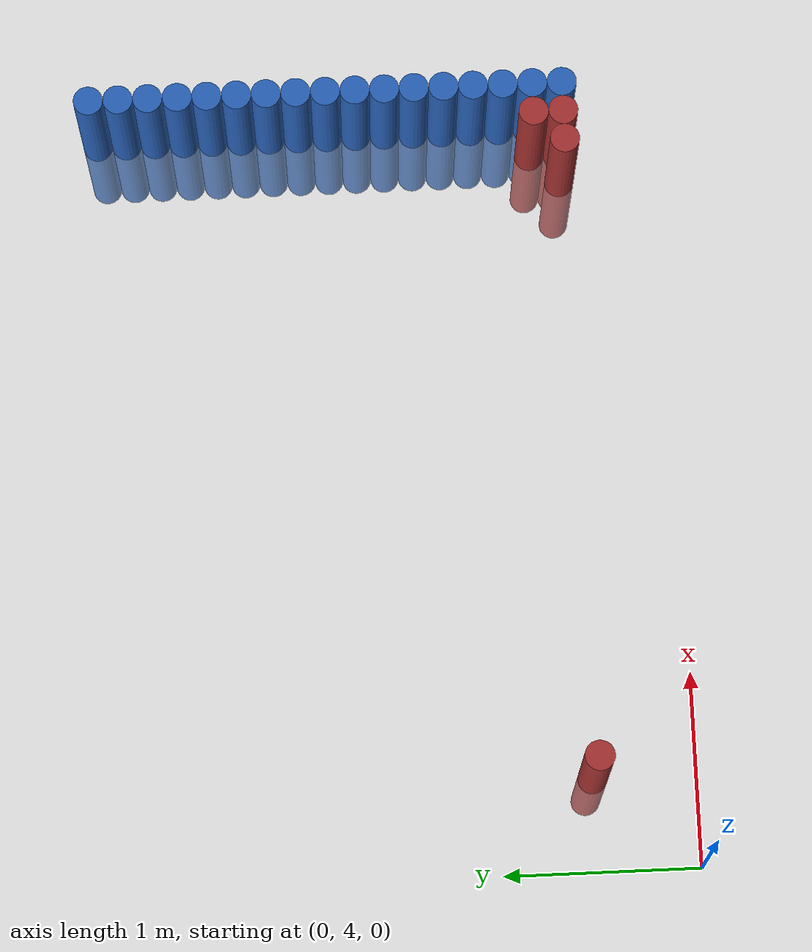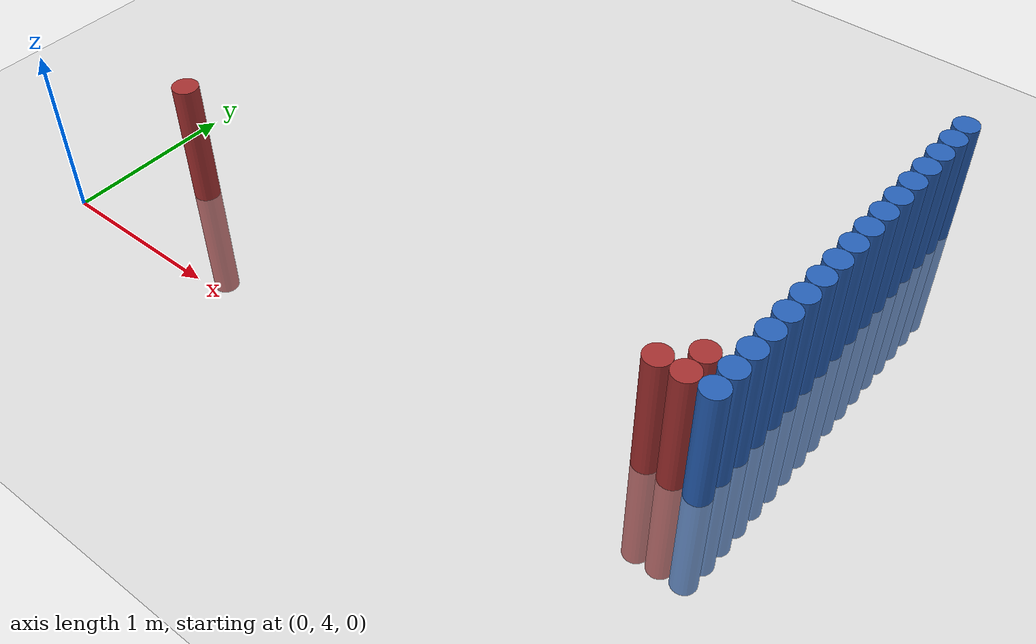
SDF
<sdf version="1.6">
 <world name="default">
  <model name="ground_plane">
   <static>1</static>
   <link name="link">
    <collision name="collision">
     <geometry><plane><normal>0 0 1</normal><size>100 100</size></plane></geometry>
     <surface><friction><ode><mu>100</mu><mu2>50</mu2></ode></friction></surface>
    </collision>
    <visual name="visual">
     <cast_shadows>0</cast_shadows>
     <geometry><plane><normal>0 0 1</normal><size>100 100</size></plane></geometry>
     <material>
      <script><uri>file://media/materials/scripts/gazebo.material</uri><name>Gazebo/Grey</name></script>
     </material>
    </visual>
   </link>
  </model>
  <model name="unit_cylinder_174">
   <static>1</static>
   <pose>3.925000 4.525000 0.000000 0.000000 0.000000 0.000000</pose>
   <link name="link">
    <inertial>
     <mass>1</mass>
     <inertia><ixx>0.145833</ixx><ixy>0</ixy><ixz>0</ixz><iyy>0.145833</iyy><iyz>0</iyz><izz>0.125</izz></inertia>
    </inertial>
    <collision name="collision">
     <geometry><cylinder><radius>0.075000</radius><length>1.5</length></cylinder></geometry>
    </collision>
    <visual name="visual">
     <geometry><cylinder><radius>0.075000</radius><length>1.5</length></cylinder></geometry>
     <material>
      <ambient>0.152000 0.379000 0.720000 1</ambient>
      <diffuse>0.152000 0.379000 0.720000 1</diffuse>
     </material>
     <material>
      <script><name>Gazebo/Grey</name><uri>file://media/materials/scripts/gazebo.material</uri></script>
     </material>
    </visual>
   </link>
  </model>
  <model name="unit_cylinder_176">
   <static>1</static>
   <pose>3.925000 4.675000 0.000000 0.000000 0.000000 0.000000</pose>
   <link name="link">
    <inertial>
     <mass>1</mass>
     <inertia><ixx>0.145833</ixx><ixy>0</ixy><ixz>0</ixz><iyy>0.145833</iyy><iyz>0</iyz><izz>0.125</izz></inertia>
    </inertial>
    <collision name="collision">
     <geometry><cylinder><radius>0.075000</radius><length>1.5</length></cylinder></geometry>
    </collision>
    <visual name="visual">
     <geometry><cylinder><radius>0.075000</radius><length>1.5</length></cylinder></geometry>
     <material>
      <ambient>0.152000 0.379000 0.720000 1</ambient>
      <diffuse>0.152000 0.379000 0.720000 1</diffuse>
     </material>
     <material>
      <script><name>Gazebo/Grey</name><uri>file://media/materials/scripts/gazebo.material</uri></script>
     </material>
    </visual>
   </link>
  </model>
  <model name="unit_cylinder_178">
   <static>1</static>
   <pose>3.925000 4.825000 0.000000 0.000000 0.000000 0.000000</pose>
   <link name="link">
    <inertial>
     <mass>1</mass>
     <inertia><ixx>0.145833</ixx><ixy>0</ixy><ixz>0</ixz><iyy>0.145833</iyy><iyz>0</iyz><izz>0.125</izz></inertia>
    </inertial>
    <collision name="collision">
     <geometry><cylinder><radius>0.075000</radius><length>1.5</length></cylinder></geometry>
    </collision>
    <visual name="visual">
     <geometry><cylinder><radius>0.075000</radius><length>1.5</length></cylinder></geometry>
     <material>
      <ambient>0.152000 0.379000 0.720000 1</ambient>
      <diffuse>0.152000 0.379000 0.720000 1</diffuse>
     </material>
     <material>
      <script><name>Gazebo/Grey</name><uri>file://media/materials/scripts/gazebo.material</uri></script>
     </material>
    </visual>
   </link>
  </model>
  <model name="unit_cylinder_180">
   <static>1</static>
   <pose>3.925000 4.975000 0.000000 0.000000 0.000000 0.000000</pose>
   <link name="link">
    <inertial>
     <mass>1</mass>
     <inertia><ixx>0.145833</ixx><ixy>0</ixy><ixz>0</ixz><iyy>0.145833</iyy><iyz>0</iyz><izz>0.125</izz></inertia>
    </inertial>
    <collision name="collision">
     <geometry><cylinder><radius>0.075000</radius><length>1.5</length></cylinder></geometry>
    </collision>
    <visual name="visual">
     <geometry><cylinder><radius>0.075000</radius><length>1.5</length></cylinder></geometry>
     <material>
      <ambient>0.152000 0.379000 0.720000 1</ambient>
      <diffuse>0.152000 0.379000 0.720000 1</diffuse>
     </material>
     <material>
      <script><name>Gazebo/Grey</name><uri>file://media/materials/scripts/gazebo.material</uri></script>
     </material>
    </visual>
   </link>
  </model>
  <model name="unit_cylinder_182">
   <static>1</static>
   <pose>3.925000 5.125000 0.000000 0.000000 0.000000 0.000000</pose>
   <link name="link">
    <inertial>
     <mass>1</mass>
     <inertia><ixx>0.145833</ixx><ixy>0</ixy><ixz>0</ixz><iyy>0.145833</iyy><iyz>0</iyz><izz>0.125</izz></inertia>
    </inertial>
    <collision name="collision">
     <geometry><cylinder><radius>0.075000</radius><length>1.5</length></cylinder></geometry>
    </collision>
    <visual name="visual">
     <geometry><cylinder><radius>0.075000</radius><length>1.5</length></cylinder></geometry>
     <material>
      <ambient>0.152000 0.379000 0.720000 1</ambient>
      <diffuse>0.152000 0.379000 0.720000 1</diffuse>
     </material>
     <material>
      <script><name>Gazebo/Grey</name><uri>file://media/materials/scripts/gazebo.material</uri></script>
     </material>
    </visual>
   </link>
  </model>
  <model name="unit_cylinder_184">
   <static>1</static>
   <pose>3.925000 5.275000 0.000000 0.000000 0.000000 0.000000</pose>
   <link name="link">
    <inertial>
     <mass>1</mass>
     <inertia><ixx>0.145833</ixx><ixy>0</ixy><ixz>0</ixz><iyy>0.145833</iyy><iyz>0</iyz><izz>0.125</izz></inertia>
    </inertial>
    <collision name="collision">
     <geometry><cylinder><radius>0.075000</radius><length>1.5</length></cylinder></geometry>
    </collision>
    <visual name="visual">
     <geometry><cylinder><radius>0.075000</radius><length>1.5</length></cylinder></geometry>
     <material>
      <ambient>0.152000 0.379000 0.720000 1</ambient>
      <diffuse>0.152000 0.379000 0.720000 1</diffuse>
     </material>
     <material>
      <script><name>Gazebo/Grey</name><uri>file://media/materials/scripts/gazebo.material</uri></script>
     </material>
    </visual>
   </link>
  </model>
  <model name="unit_cylinder_186">
   <static>1</static>
   <pose>3.925000 5.425000 0.000000 0.000000 0.000000 0.000000</pose>
   <link name="link">
    <inertial>
     <mass>1</mass>
     <inertia><ixx>0.145833</ixx><ixy>0</ixy><ixz>0</ixz><iyy>0.145833</iyy><iyz>0</iyz><izz>0.125</izz></inertia>
    </inertial>
    <collision name="collision">
     <geometry><cylinder><radius>0.075000</radius><length>1.5</length></cylinder></geometry>
    </collision>
    <visual name="visual">
     <geometry><cylinder><radius>0.075000</radius><length>1.5</length></cylinder></geometry>
     <material>
      <ambient>0.152000 0.379000 0.720000 1</ambient>
      <diffuse>0.152000 0.379000 0.720000 1</diffuse>
     </material>
     <material>
      <script><name>Gazebo/Grey</name><uri>file://media/materials/scripts/gazebo.material</uri></script>
     </material>
    </visual>
   </link>
  </model>
  <model name="unit_cylinder_188">
   <static>1</static>
   <pose>3.925000 5.575000 0.000000 0.000000 0.000000 0.000000</pose>
   <link name="link">
    <inertial>
     <mass>1</mass>
     <inertia><ixx>0.145833</ixx><ixy>0</ixy><ixz>0</ixz><iyy>0.145833</iyy><iyz>0</iyz><izz>0.125</izz></inertia>
    </inertial>
    <collision name="collision">
     <geometry><cylinder><radius>0.075000</radius><length>1.5</length></cylinder></geometry>
    </collision>
    <visual name="visual">
     <geometry><cylinder><radius>0.075000</radius><length>1.5</length></cylinder></geometry>
     <material>
      <ambient>0.152000 0.379000 0.720000 1</ambient>
      <diffuse>0.152000 0.379000 0.720000 1</diffuse>
     </material>
     <material>
      <script><name>Gazebo/Grey</name><uri>file://media/materials/scripts/gazebo.material</uri></script>
     </material>
    </visual>
   </link>
  </model>
  <model name="unit_cylinder_190">
   <static>1</static>
   <pose>3.925000 5.725000 0.000000 0.000000 0.000000 0.000000</pose>
   <link name="link">
    <inertial>
     <mass>1</mass>
     <inertia><ixx>0.145833</ixx><ixy>0</ixy><ixz>0</ixz><iyy>0.145833</iyy><iyz>0</iyz><izz>0.125</izz></inertia>
    </inertial>
    <collision name="collision">
     <geometry><cylinder><radius>0.075000</radius><length>1.5</length></cylinder></geometry>
    </collision>
    <visual name="visual">
     <geometry><cylinder><radius>0.075000</radius><length>1.5</length></cylinder></geometry>
     <material>
      <ambient>0.152000 0.379000 0.720000 1</ambient>
      <diffuse>0.152000 0.379000 0.720000 1</diffuse>
     </material>
     <material>
      <script><name>Gazebo/Grey</name><uri>file://media/materials/scripts/gazebo.material</uri></script>
     </material>
    </visual>
   </link>
  </model>
  <model name="unit_cylinder_192">
   <static>1</static>
   <pose>3.925000 5.875000 0.000000 0.000000 0.000000 0.000000</pose>
   <link name="link">
    <inertial>
     <mass>1</mass>
     <inertia><ixx>0.145833</ixx><ixy>0</ixy><ixz>0</ixz><iyy>0.145833</iyy><iyz>0</iyz><izz>0.125</izz></inertia>
    </inertial>
    <collision name="collision">
     <geometry><cylinder><radius>0.075000</radius><length>1.5</length></cylinder></geometry>
    </collision>
    <visual name="visual">
     <geometry><cylinder><radius>0.075000</radius><length>1.5</length></cylinder></geometry>
     <material>
      <ambient>0.152000 0.379000 0.720000 1</ambient>
      <diffuse>0.152000 0.379000 0.720000 1</diffuse>
     </material>
     <material>
      <script><name>Gazebo/Grey</name><uri>file://media/materials/scripts/gazebo.material</uri></script>
     </material>
    </visual>
   </link>
  </model>
  <model name="unit_cylinder_194">
   <static>1</static>
   <pose>3.925000 6.025000 0.000000 0.000000 0.000000 0.000000</pose>
   <link name="link">
    <inertial>
     <mass>1</mass>
     <inertia><ixx>0.145833</ixx><ixy>0</ixy><ixz>0</ixz><iyy>0.145833</iyy><iyz>0</iyz><izz>0.125</izz></inertia>
    </inertial>
    <collision name="collision">
     <geometry><cylinder><radius>0.075000</radius><length>1.5</length></cylinder></geometry>
    </collision>
    <visual name="visual">
     <geometry><cylinder><radius>0.075000</radius><length>1.5</length></cylinder></geometry>
     <material>
      <ambient>0.152000 0.379000 0.720000 1</ambient>
      <diffuse>0.152000 0.379000 0.720000 1</diffuse>
     </material>
     <material>
      <script><name>Gazebo/Grey</name><uri>file://media/materials/scripts/gazebo.material</uri></script>
     </material>
    </visual>
   </link>
  </model>
  <model name="unit_cylinder_196">
   <static>1</static>
   <pose>3.925000 6.175000 0.000000 0.000000 0.000000 0.000000</pose>
   <link name="link">
    <inertial>
     <mass>1</mass>
     <inertia><ixx>0.145833</ixx><ixy>0</ixy><ixz>0</ixz><iyy>0.145833</iyy><iyz>0</iyz><izz>0.125</izz></inertia>
    </inertial>
    <collision name="collision">
     <geometry><cylinder><radius>0.075000</radius><length>1.5</length></cylinder></geometry>
    </collision>
    <visual name="visual">
     <geometry><cylinder><radius>0.075000</radius><length>1.5</length></cylinder></geometry>
     <material>
      <ambient>0.152000 0.379000 0.720000 1</ambient>
      <diffuse>0.152000 0.379000 0.720000 1</diffuse>
     </material>
     <material>
      <script><name>Gazebo/Grey</name><uri>file://media/materials/scripts/gazebo.material</uri></script>
     </material>
    </visual>
   </link>
  </model>
  <model name="unit_cylinder_198">
   <static>1</static>
   <pose>3.925000 6.325000 0.000000 0.000000 0.000000 0.000000</pose>
   <link name="link">
    <inertial>
     <mass>1</mass>
     <inertia><ixx>0.145833</ixx><ixy>0</ixy><ixz>0</ixz><iyy>0.145833</iyy><iyz>0</iyz><izz>0.125</izz></inertia>
    </inertial>
    <collision name="collision">
     <geometry><cylinder><radius>0.075000</radius><length>1.5</length></cylinder></geometry>
    </collision>
    <visual name="visual">
     <geometry><cylinder><radius>0.075000</radius><length>1.5</length></cylinder></geometry>
     <material>
      <ambient>0.152000 0.379000 0.720000 1</ambient>
      <diffuse>0.152000 0.379000 0.720000 1</diffuse>
     </material>
     <material>
      <script><name>Gazebo/Grey</name><uri>file://media/materials/scripts/gazebo.material</uri></script>
     </material>
    </visual>
   </link>
  </model>
  <model name="unit_cylinder_200">
   <static>1</static>
   <pose>3.925000 6.475000 0.000000 0.000000 0.000000 0.000000</pose>
   <link name="link">
    <inertial>
     <mass>1</mass>
     <inertia><ixx>0.145833</ixx><ixy>0</ixy><ixz>0</ixz><iyy>0.145833</iyy><iyz>0</iyz><izz>0.125</izz></inertia>
    </inertial>
    <collision name="collision">
     <geometry><cylinder><radius>0.075000</radius><length>1.5</length></cylinder></geometry>
    </collision>
    <visual name="visual">
     <geometry><cylinder><radius>0.075000</radius><length>1.5</length></cylinder></geometry>
     <material>
      <ambient>0.152000 0.379000 0.720000 1</ambient>
      <diffuse>0.152000 0.379000 0.720000 1</diffuse>
     </material>
     <material>
      <script><name>Gazebo/Grey</name><uri>file://media/materials/scripts/gazebo.material</uri></script>
     </material>
    </visual>
   </link>
  </model>
  <model name="unit_cylinder_202">
   <static>1</static>
   <pose>3.925000 6.625000 0.000000 0.000000 0.000000 0.000000</pose>
   <link name="link">
    <inertial>
     <mass>1</mass>
     <inertia><ixx>0.145833</ixx><ixy>0</ixy><ixz>0</ixz><iyy>0.145833</iyy><iyz>0</iyz><izz>0.125</izz></inertia>
    </inertial>
    <collision name="collision">
     <geometry><cylinder><radius>0.075000</radius><length>1.5</length></cylinder></geometry>
    </collision>
    <visual name="visual">
     <geometry><cylinder><radius>0.075000</radius><length>1.5</length></cylinder></geometry>
     <material>
      <ambient>0.152000 0.379000 0.720000 1</ambient>
      <diffuse>0.152000 0.379000 0.720000 1</diffuse>
     </material>
     <material>
      <script><name>Gazebo/Grey</name><uri>file://media/materials/scripts/gazebo.material</uri></script>
     </material>
    </visual>
   </link>
  </model>
  <model name="unit_cylinder_204">
   <static>1</static>
   <pose>3.925000 6.775000 0.000000 0.000000 0.000000 0.000000</pose>
   <link name="link">
    <inertial>
     <mass>1</mass>
     <inertia><ixx>0.145833</ixx><ixy>0</ixy><ixz>0</ixz><iyy>0.145833</iyy><iyz>0</iyz><izz>0.125</izz></inertia>
    </inertial>
    <collision name="collision">
     <geometry><cylinder><radius>0.075000</radius><length>1.5</length></cylinder></geometry>
    </collision>
    <visual name="visual">
     <geometry><cylinder><radius>0.075000</radius><length>1.5</length></cylinder></geometry>
     <material>
      <ambient>0.152000 0.379000 0.720000 1</ambient>
      <diffuse>0.152000 0.379000 0.720000 1</diffuse>
     </material>
     <material>
      <script><name>Gazebo/Grey</name><uri>file://media/materials/scripts/gazebo.material</uri></script>
     </material>
    </visual>
   </link>
  </model>
  <model name="unit_cylinder_206">
   <static>1</static>
   <pose>3.925000 6.925000 0.000000 0.000000 0.000000 0.000000</pose>
   <link name="link">
    <inertial>
     <mass>1</mass>
     <inertia><ixx>0.145833</ixx><ixy>0</ixy><ixz>0</ixz><iyy>0.145833</iyy><iyz>0</iyz><izz>0.125</izz></inertia>
    </inertial>
    <collision name="collision">
     <geometry><cylinder><radius>0.075000</radius><length>1.5</length></cylinder></geometry>
    </collision>
    <visual name="visual">
     <geometry><cylinder><radius>0.075000</radius><length>1.5</length></cylinder></geometry>
     <material>
      <ambient>0.152000 0.379000 0.720000 1</ambient>
      <diffuse>0.152000 0.379000 0.720000 1</diffuse>
     </material>
     <material>
      <script><name>Gazebo/Grey</name><uri>file://media/materials/scripts/gazebo.material</uri></script>
     </material>
    </visual>
   </link>
  </model>
  <model name="unit_cylinder_327">
   <static>1</static>
   <pose>0.475000 4.525000 0.000000 0.000000 0.000000 0.000000</pose>
   <link name="link">
    <inertial>
     <mass>1</mass>
     <inertia><ixx>0.145833</ixx><ixy>0</ixy><ixz>0</ixz><iyy>0.145833</iyy><iyz>0</iyz><izz>0.125</izz></inertia>
    </inertial>
    <collision name="collision">
     <geometry><cylinder><radius>0.075000</radius><length>1.5</length></cylinder></geometry>
    </collision>
    <visual name="visual">
     <geometry><cylinder><radius>0.075000</radius><length>1.5</length></cylinder></geometry>
     <material>
      <ambient>0.648000 0.192000 0.192000 1</ambient>
      <diffuse>0.648000 0.192000 0.192000 1</diffuse>
     </material>
     <material>
      <script><name>Gazebo/Grey</name><uri>file://media/materials/scripts/gazebo.material</uri></script>
     </material>
    </visual>
   </link>
  </model>
  <model name="unit_cylinder_369">
   <static>1</static>
   <pose>3.625000 4.525000 0.000000 0.000000 0.000000 0.000000</pose>
   <link name="link">
    <inertial>
     <mass>1</mass>
     <inertia><ixx>0.145833</ixx><ixy>0</ixy><ixz>0</ixz><iyy>0.145833</iyy><iyz>0</iyz><izz>0.125</izz></inertia>
    </inertial>
    <collision name="collision">
     <geometry><cylinder><radius>0.075000</radius><length>1.5</length></cylinder></geometry>
    </collision>
    <visual name="visual">
     <geometry><cylinder><radius>0.075000</radius><length>1.5</length></cylinder></geometry>
     <material>
      <ambient>0.648000 0.192000 0.192000 1</ambient>
      <diffuse>0.648000 0.192000 0.192000 1</diffuse>
     </material>
     <material>
      <script><name>Gazebo/Grey</name><uri>file://media/materials/scripts/gazebo.material</uri></script>
     </material>
    </visual>
   </link>
  </model>
  <model name="unit_cylinder_383">
   <static>1</static>
   <pose>3.775000 4.525000 0.000000 0.000000 0.000000 0.000000</pose>
   <link name="link">
    <inertial>
     <mass>1</mass>
     <inertia><ixx>0.145833</ixx><ixy>0</ixy><ixz>0</ixz><iyy>0.145833</iyy><iyz>0</iyz><izz>0.125</izz></inertia>
    </inertial>
    <collision name="collision">
     <geometry><cylinder><radius>0.075000</radius><length>1.5</length></cylinder></geometry>
    </collision>
    <visual name="visual">
     <geometry><cylinder><radius>0.075000</radius><length>1.5</length></cylinder></geometry>
     <material>
      <ambient>0.648000 0.192000 0.192000 1</ambient>
      <diffuse>0.648000 0.192000 0.192000 1</diffuse>
     </material>
     <material>
      <script><name>Gazebo/Grey</name><uri>file://media/materials/scripts/gazebo.material</uri></script>
     </material>
    </visual>
   </link>
  </model>
  <model name="unit_cylinder_384">
   <static>1</static>
   <pose>3.775000 4.675000 0.000000 0.000000 0.000000 0.000000</pose>
   <link name="link">
    <inertial>
     <mass>1</mass>
     <inertia><ixx>0.145833</ixx><ixy>0</ixy><ixz>0</ixz><iyy>0.145833</iyy><iyz>0</iyz><izz>0.125</izz></inertia>
    </inertial>
    <collision name="collision">
     <geometry><cylinder><radius>0.075000</radius><length>1.5</length></cylinder></geometry>
    </collision>
    <visual name="visual">
     <geometry><cylinder><radius>0.075000</radius><length>1.5</length></cylinder></geometry>
     <material>
      <ambient>0.648000 0.192000 0.192000 1</ambient>
      <diffuse>0.648000 0.192000 0.192000 1</diffuse>
     </material>
     <material>
      <script><name>Gazebo/Grey</name><uri>file://media/materials/scripts/gazebo.material</uri></script>
     </material>
    </visual>
   </link>
  </model>
  <model name="unit_cylinder_428">
   <static>1</static>
   <pose>3.925000 4.525000 0.000000 0.000000 0.000000 0.000000</pose>
   <link name="link">
    <inertial>
     <mass>1</mass>
     <inertia><ixx>0.145833</ixx><ixy>0</ixy><ixz>0</ixz><iyy>0.145833</iyy><iyz>0</iyz><izz>0.125</izz></inertia>
    </inertial>
    <collision name="collision">
     <geometry><cylinder><radius>0.075000</radius><length>1.5</length></cylinder></geometry>
    </collision>
    <visual name="visual">
     <geometry><cylinder><radius>0.075000</radius><length>1.5</length></cylinder></geometry>
     <material>
      <ambient>0.152000 0.379000 0.720000 1</ambient>
      <diffuse>0.152000 0.379000 0.720000 1</diffuse>
     </material>
     <material>
      <script><name>Gazebo/Grey</name><uri>file://media/materials/scripts/gazebo.material</uri></script>
     </material>
    </visual>
   </link>
  </model>
  <model name="unit_cylinder_429">
   <static>1</static>
   <pose>3.925000 4.675000 0.000000 0.000000 0.000000 0.000000</pose>
   <link name="link">
    <inertial>
     <mass>1</mass>
     <inertia><ixx>0.145833</ixx><ixy>0</ixy><ixz>0</ixz><iyy>0.145833</iyy><iyz>0</iyz><izz>0.125</izz></inertia>
    </inertial>
    <collision name="collision">
     <geometry><cylinder><radius>0.075000</radius><length>1.5</length></cylinder></geometry>
    </collision>
    <visual name="visual">
     <geometry><cylinder><radius>0.075000</radius><length>1.5</length></cylinder></geometry>
     <material>
      <ambient>0.152000 0.379000 0.720000 1</ambient>
      <diffuse>0.152000 0.379000 0.720000 1</diffuse>
     </material>
     <material>
      <script><name>Gazebo/Grey</name><uri>file://media/materials/scripts/gazebo.material</uri></script>
     </material>
    </visual>
   </link>
  </model>
  <model name="unit_cylinder_430">
   <static>1</static>
   <pose>3.925000 4.825000 0.000000 0.000000 0.000000 0.000000</pose>
   <link name="link">
    <inertial>
     <mass>1</mass>
     <inertia><ixx>0.145833</ixx><ixy>0</ixy><ixz>0</ixz><iyy>0.145833</iyy><iyz>0</iyz><izz>0.125</izz></inertia>
    </inertial>
    <collision name="collision">
     <geometry><cylinder><radius>0.075000</radius><length>1.5</length></cylinder></geometry>
    </collision>
    <visual name="visual">
     <geometry><cylinder><radius>0.075000</radius><length>1.5</length></cylinder></geometry>
     <material>
      <ambient>0.152000 0.379000 0.720000 1</ambient>
      <diffuse>0.152000 0.379000 0.720000 1</diffuse>
     </material>
     <material>
      <script><name>Gazebo/Grey</name><uri>file://media/materials/scripts/gazebo.material</uri></script>
     </material>
    </visual>
   </link>
  </model>
  <model name="unit_cylinder_431">
   <static>1</static>
   <pose>3.925000 4.975000 0.000000 0.000000 0.000000 0.000000</pose>
   <link name="link">
    <inertial>
     <mass>1</mass>
     <inertia><ixx>0.145833</ixx><ixy>0</ixy><ixz>0</ixz><iyy>0.145833</iyy><iyz>0</iyz><izz>0.125</izz></inertia>
    </inertial>
    <collision name="collision">
     <geometry><cylinder><radius>0.075000</radius><length>1.5</length></cylinder></geometry>
    </collision>
    <visual name="visual">
     <geometry><cylinder><radius>0.075000</radius><length>1.5</length></cylinder></geometry>
     <material>
      <ambient>0.152000 0.379000 0.720000 1</ambient>
      <diffuse>0.152000 0.379000 0.720000 1</diffuse>
     </material>
     <material>
      <script><name>Gazebo/Grey</name><uri>file://media/materials/scripts/gazebo.material</uri></script>
     </material>
    </visual>
   </link>
  </model>
  <model name="unit_cylinder_432">
   <static>1</static>
   <pose>3.925000 5.125000 0.000000 0.000000 0.000000 0.000000</pose>
   <link name="link">
    <inertial>
     <mass>1</mass>
     <inertia><ixx>0.145833</ixx><ixy>0</ixy><ixz>0</ixz><iyy>0.145833</iyy><iyz>0</iyz><izz>0.125</izz></inertia>
    </inertial>
    <collision name="collision">
     <geometry><cylinder><radius>0.075000</radius><length>1.5</length></cylinder></geometry>
    </collision>
    <visual name="visual">
     <geometry><cylinder><radius>0.075000</radius><length>1.5</length></cylinder></geometry>
     <material>
      <ambient>0.152000 0.379000 0.720000 1</ambient>
      <diffuse>0.152000 0.379000 0.720000 1</diffuse>
     </material>
     <material>
      <script><name>Gazebo/Grey</name><uri>file://media/materials/scripts/gazebo.material</uri></script>
     </material>
    </visual>
   </link>
  </model>
  <model name="unit_cylinder_433">
   <static>1</static>
   <pose>3.925000 5.275000 0.000000 0.000000 0.000000 0.000000</pose>
   <link name="link">
    <inertial>
     <mass>1</mass>
     <inertia><ixx>0.145833</ixx><ixy>0</ixy><ixz>0</ixz><iyy>0.145833</iyy><iyz>0</iyz><izz>0.125</izz></inertia>
    </inertial>
    <collision name="collision">
     <geometry><cylinder><radius>0.075000</radius><length>1.5</length></cylinder></geometry>
    </collision>
    <visual name="visual">
     <geometry><cylinder><radius>0.075000</radius><length>1.5</length></cylinder></geometry>
     <material>
      <ambient>0.152000 0.379000 0.720000 1</ambient>
      <diffuse>0.152000 0.379000 0.720000 1</diffuse>
     </material>
     <material>
      <script><name>Gazebo/Grey</name><uri>file://media/materials/scripts/gazebo.material</uri></script>
     </material>
    </visual>
   </link>
  </model>
  <model name="unit_cylinder_434">
   <static>1</static>
   <pose>3.925000 5.425000 0.000000 0.000000 0.000000 0.000000</pose>
   <link name="link">
    <inertial>
     <mass>1</mass>
     <inertia><ixx>0.145833</ixx><ixy>0</ixy><ixz>0</ixz><iyy>0.145833</iyy><iyz>0</iyz><izz>0.125</izz></inertia>
    </inertial>
    <collision name="collision">
     <geometry><cylinder><radius>0.075000</radius><length>1.5</length></cylinder></geometry>
    </collision>
    <visual name="visual">
     <geometry><cylinder><radius>0.075000</radius><length>1.5</length></cylinder></geometry>
     <material>
      <ambient>0.152000 0.379000 0.720000 1</ambient>
      <diffuse>0.152000 0.379000 0.720000 1</diffuse>
     </material>
     <material>
      <script><name>Gazebo/Grey</name><uri>file://media/materials/scripts/gazebo.material</uri></script>
     </material>
    </visual>
   </link>
  </model>
 </world>
</sdf>
